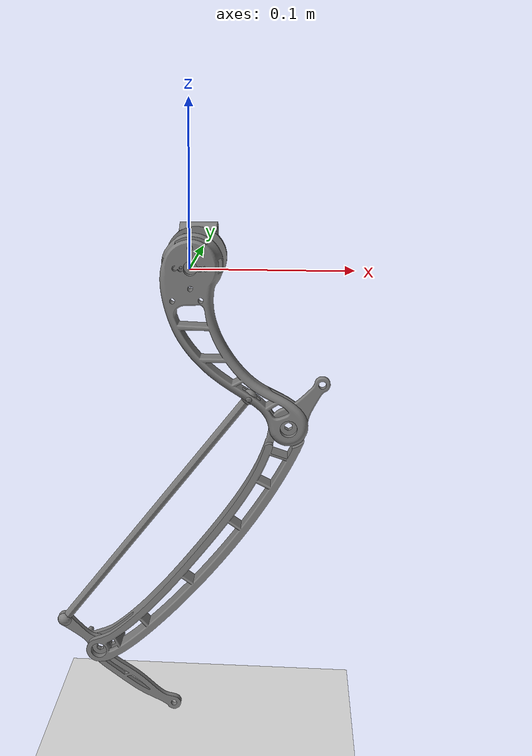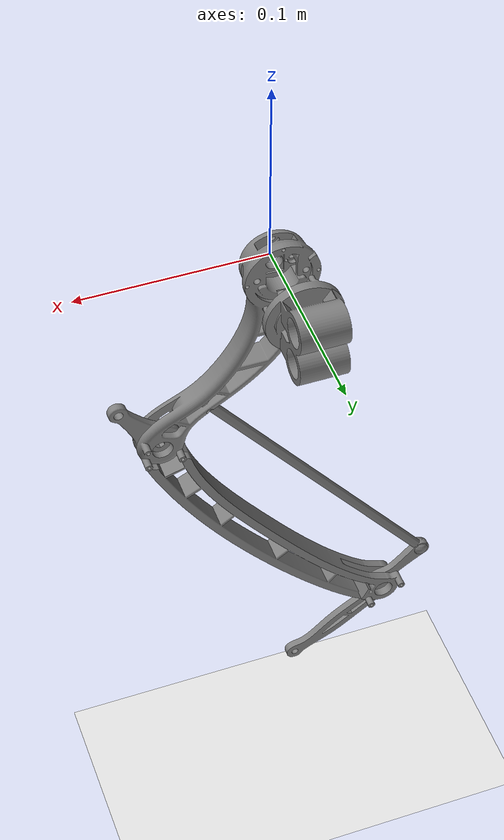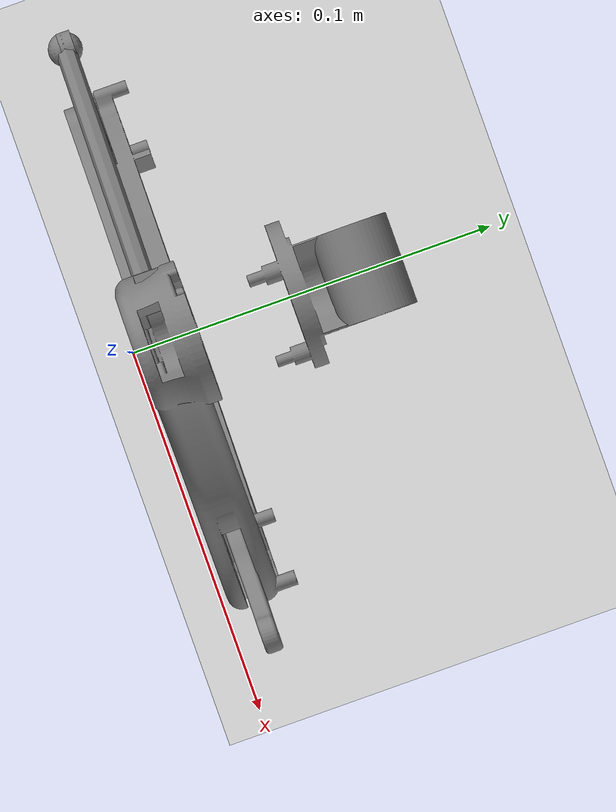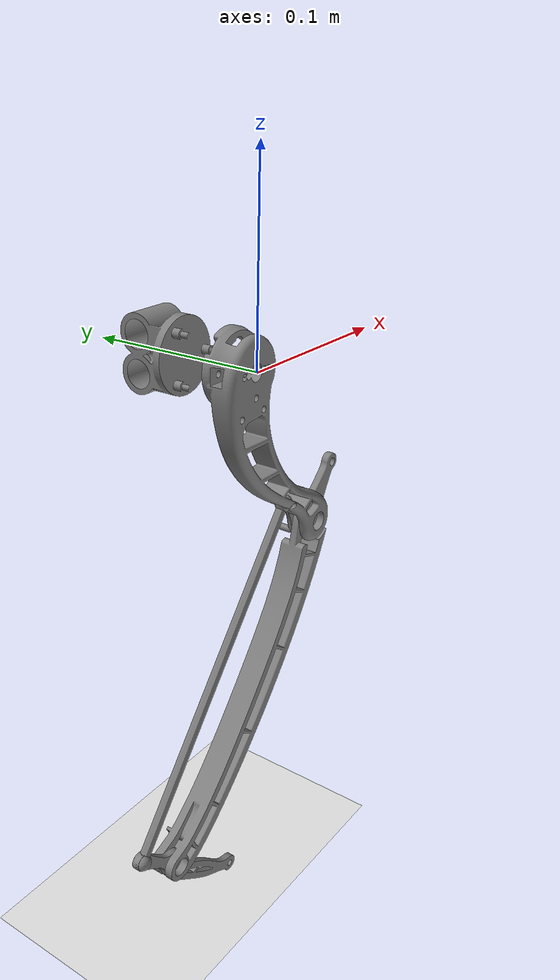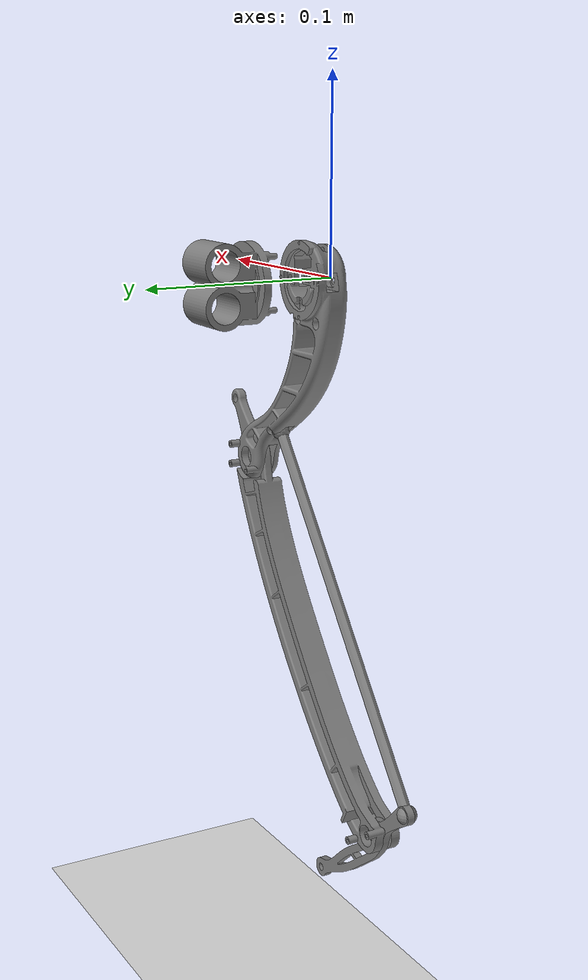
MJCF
<!-- purely visual tendon -->
<mujoco model="leg_hopper">
    <compiler angle="radian" meshdir='stl_meshes' />
    <option timestep='0.0001' iterations='50' solver='PGS' gravity='0 0 -9.81'  />
    <option>
        <flag contact="enable" />
    </option>

    <visual>
        <global offwidth="1920" offheight="1080" />
    </visual>

    <contact>
        <exclude body1="hip_linear_guide" body2="femur" />
        <exclude body1="femur" body2="tibia" />
        <exclude body1="tibia" body2="metatarsals" />
    </contact>

    <asset>
        <texture name="chk" type="2d" builtin="checker"
                 rgb1="1 1 1" rgb2="0.8 0.8 0.8"
                 width="512" height="512"/>
        <material name="mat_chk" texture="chk" texrepeat="10 10"/>
    </asset>

    <default>
        <geom type="mesh" xyaxes="-1 0 0 0 0 -1" condim='3' conaffinity='15' />
        <joint type="hinge" limited="true" axis="0 1 0" />
        <position ctrllimited="true" kp="1" kv="0.1" />
        <!-- kp is proportional gain, kv is damping gain -->
    </default>

    <asset>
        <mesh name="femur" file="femur.stl" scale="0.001 0.001 0.001" />
        <mesh name="tibia" file="tibia.stl" scale="0.001 0.001 0.001" />
        <mesh name="metatarsals" file="metatarsals.stl" scale="0.001 0.001 0.001" />
        <mesh name="hip_linear_guide" file="hip_linear_guide.stl" scale="0.001 0.001 0.001" />
    </asset>

    <worldbody>
        <body name="ground" pos="0 0 -0.35">
            <geom type="plane"
                size="50 50 0.1"
                material="mat_chk"
                euler="0 0 0"
                friction="1.3 0.1 0.01"
                solimp="0.9 0.95 0.01"
                solref="0.005 1"
                margin="0.01"
                condim='3' conaffinity='15' />
        </body>

        <!-- Tendon mass for inertia but no physical interaction -->

        <!-- everything is in SI Units, therefore moment of inertia is in kg*m^2 -->
        <body name="hip_linear_guide">
            <!-- make the camera track the linear guide all the time  -->
            <!-- 2D linear guide x and y, frictionloss is  -->
        <joint name ="hip_linear_x" type="slide" axis="1 0 0" pos="0 0 0" limited="false"
                />
            <joint name="hip_linear_z" type="slide" axis="0 0 1" pos="0 0 0" limited="false"
                />
            <geom mesh="hip_linear_guide" density="10" xyaxes="0 0 1 -1 0 0" />

            <!-- create a camera that follows the hip linear guide:  -->
            <camera
                name="close_cam"
                pos="0 -1.8 1.5"
                quat="0.9239 0.3827 0 0"
            />

            <body name="femur">
                <inertial pos="0.006561 0.00810 -0.016928" mass="0.2"
                    fullinertia="8.135e-4 8.553e-4 4.475e-4 -3.63985e-7 2.497e-4 -1.181964e-5"/>
                <site name="spring_A" pos="0.036953 0.0077 -0.083392" />
                <joint name="hip_joint" pos="0.0 0.0 0.0" axis="0 1 0" limited="true" range="-1 1"
                    damping="0.01" />
                <geom mesh="femur" density="0" />

                <body name="tibia">
                    <inertial pos="0.010844 0.008461 -0.18786" mass="0.08"
                        fullinertia="7.895e-4 1.229e-3 4.483e-4  1.354515e-6 -5.707e-4 1.510705e-6" />
                    <joint name="knee_joint" pos="0.062793 0.0005 -0.10262" axis="0 1 0" limited="true" range="-1 1" damping = "0.01" />
                    <geom mesh="tibia" density="0" />

                    <body name="metatarsals">
                        <inertial pos="-0.047396 0.00845 -0.288587" mass="0.02"
                            fullinertia="1.643696e-5 3.9197592e-5 2.3084088e-5  -1.690e-14 1.8807458e-5 1.031e-14" />
                        <site name="spring_B" pos="-0.090869 0.0077 -0.24991" />
                        <joint name="ankle_joint" pos="-0.066306 0.01045 -0.27042" axis="0 1 0"
                            limited="true" range="-1 1" damping="0.01" />
                        <geom mesh="metatarsals" density="0" friction="1.3 0.02 0.002" />
                    </body>
                </body>
            </body>
        </body>
    </worldbody>

    <!-- Spring setup as tendon: Tension Springforce in python wrapper,
    by setting the range to min l = l0 = 0.20992 we enforce rigid tendon under compression -->

    <tendon>
        <spatial name="leg_spring"
            limited="true"
            range="0.20992 0.5"
            solreflimit="0.002 1" solimplimit="0.9 0.95 0.001" margin="0.001">
            <site site="spring_A" />
            <site site="spring_B" />
        </spatial>
    </tendon>

    <actuator>
        <motor name="hip_motor" joint="hip_joint" ctrlrange="-2 2" />
        <motor name="knee_motor" joint="knee_joint"  ctrlrange="-2 2" />
        <!-- add the gearing to the actuator, not for now since complicates torque input -->
        <!-- spring force along the tendon path -->
        <general name="leg_spring_actuator" tendon="leg_spring" gainprm="-1" biasprm="0 0 0" ctrlrange="0 100" />
    </actuator>
</mujoco>
